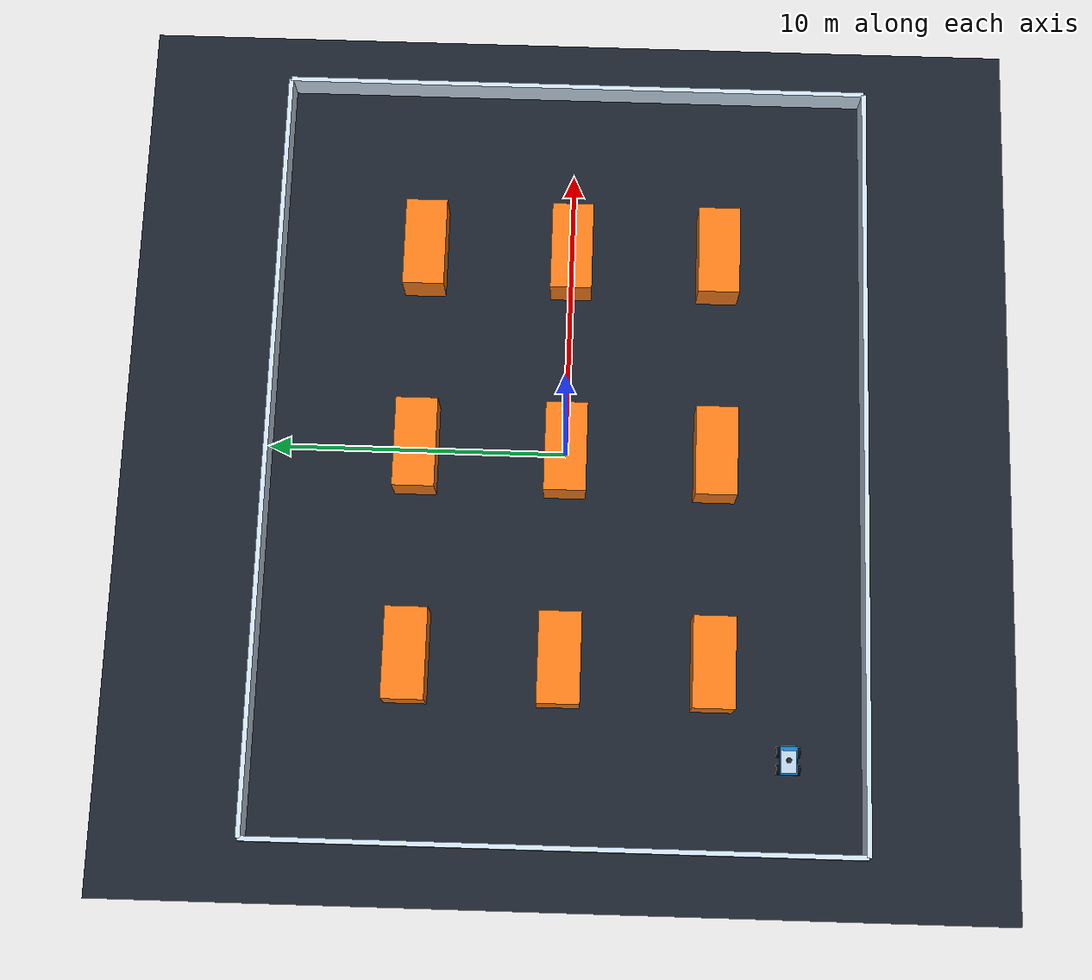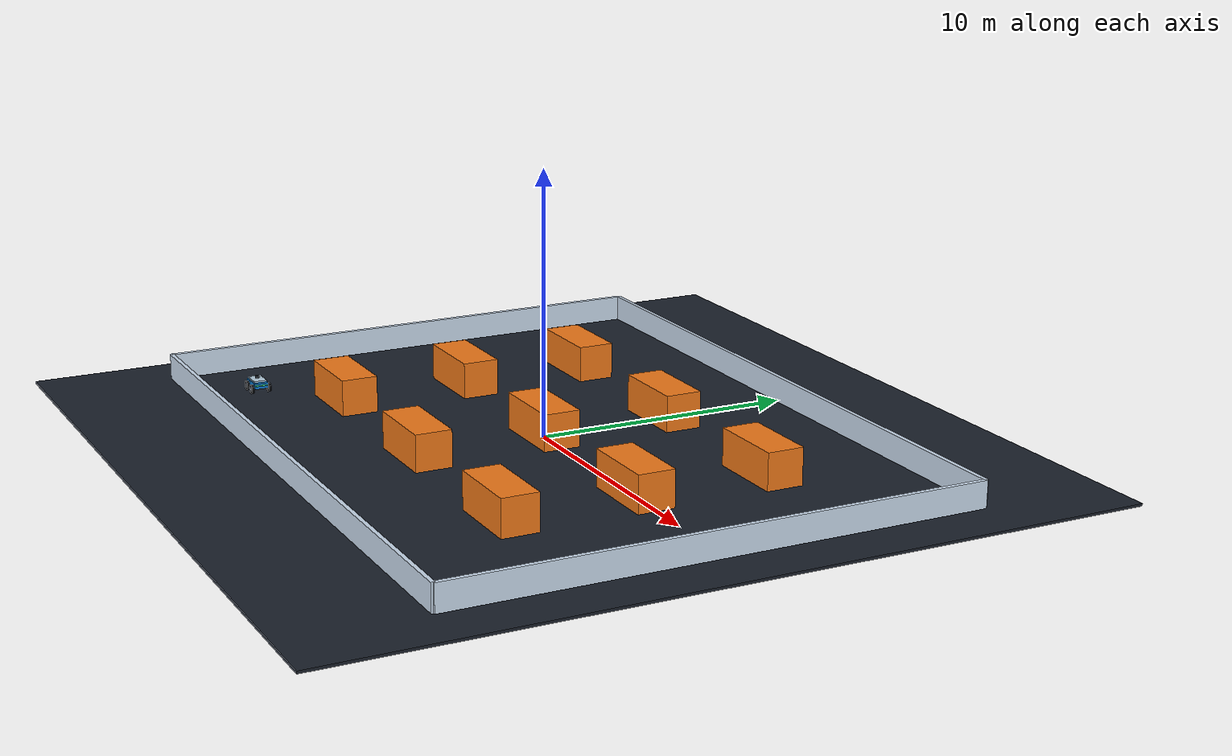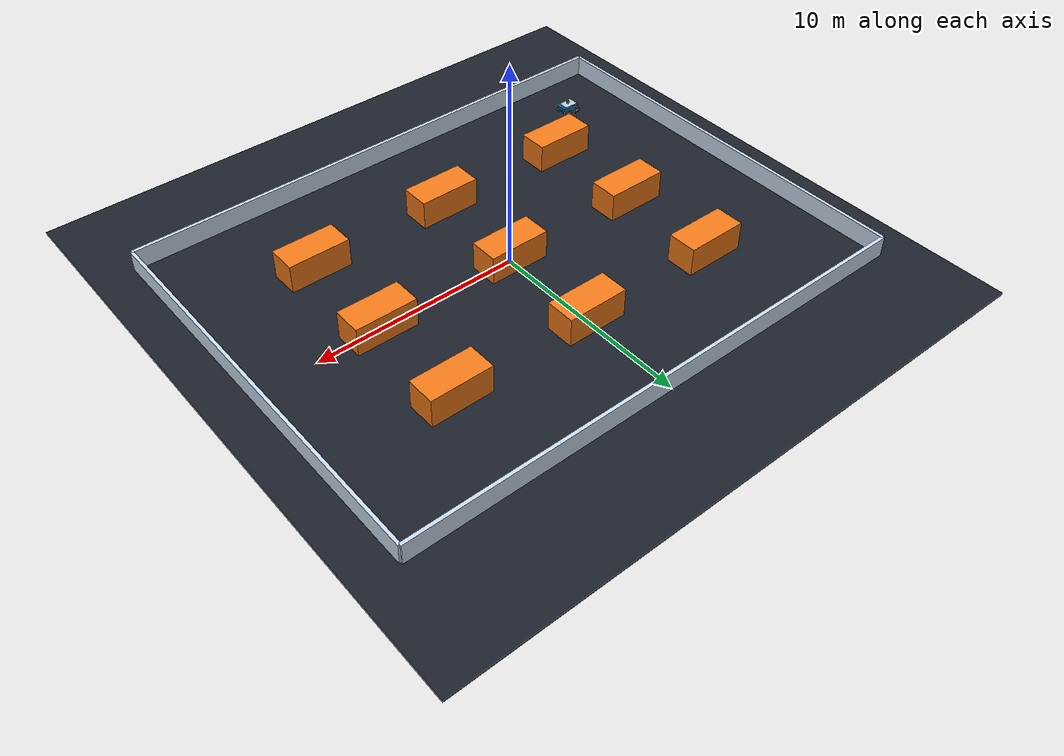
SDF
<?xml version='1.0' encoding='utf-8'?>
<sdf version="1.9">
  <world name="loop_course">
    <physics name="physics" type="ignored">
      <max_step_size>0.002</max_step_size>
      <real_time_factor>1.0</real_time_factor>
    </physics>
    <plugin filename="gz-sim-physics-system" name="gz::sim::systems::Physics" />
    <plugin filename="gz-sim-user-commands-system" name="gz::sim::systems::UserCommands" />
    <plugin filename="gz-sim-scene-broadcaster-system" name="gz::sim::systems::SceneBroadcaster" />
    <plugin filename="gz-sim-contact-system" name="gz::sim::systems::Contact" />
    <plugin filename="gz-sim-imu-system" name="gz::sim::systems::Imu" />
    <plugin filename="gz-sim-sensors-system" name="gz::sim::systems::Sensors">
      <render_engine>ogre2</render_engine>
    </plugin>
    <scene>
      <ambient>0.65 0.65 0.65 1</ambient>
      <background>0.12 0.16 0.22 1</background>
      <shadows>true</shadows>
    </scene>
    <light name="sun" type="directional">
      <pose>0 0 12 0 0 0</pose>
      <diffuse>0.9 0.9 0.85 1</diffuse>
      <specular>0.2 0.2 0.2 1</specular>
      <direction>-0.4 0.2 -0.9</direction>
      <cast_shadows>true</cast_shadows>
    </light>
    <gui fullscreen="false">
      <plugin filename="MinimalScene" name="3D View">
        <engine>ogre2</engine>
        <scene>scene</scene>
        <camera_pose>21 -28 32 0 0.74 2.21</camera_pose>
        <gz-gui>
          <property type="string" key="state">docked</property>
        </gz-gui>
      </plugin>
      <plugin filename="GzSceneManager" name="GzSceneManager" />
      <plugin filename="InteractiveViewControl" name="InteractiveViewControl" />
      <plugin filename="CameraTracking" name="CameraTracking" />
      <plugin filename="EntityContextMenuPlugin" name="EntityContextMenuPlugin" />
      <plugin filename="WorldControl" name="WorldControl">
        <play_pause>true</play_pause>
        <start_paused>false</start_paused>
      </plugin>
      <plugin filename="WorldStats" name="WorldStats">
        <sim_time>true</sim_time>
        <real_time>true</real_time>
        <real_time_factor>true</real_time_factor>
      </plugin>
    </gui>
    <model name="ground">
      <static>true</static>
      <link name="ground">
        <collision name="ground_collision">
          <pose>0 0 -0.05 0 0 0</pose>
          <geometry>
            <box>
              <size>30 30 0.1</size>
            </box>
          </geometry>
        </collision>
        <visual name="ground_visual">
          <pose>0 0 -0.05 0 0 0</pose>
          <geometry>
            <box>
              <size>30 30 0.1</size>
            </box>
          </geometry>
          <material>
            <ambient>0.105 0.13 0.17 1</ambient>
            <diffuse>0.105 0.13 0.17 1</diffuse>
          </material>
        </visual>
      </link>
    </model>
    <model name="loop_cart">
      <pose>-10 -7.5 .18 0 0 0</pose>
      <link name="base_link">
        <inertial>
          <mass>12</mass>
          <inertia>
            <ixx>0.45</ixx>
            <iyy>0.95</iyy>
            <izz>1.2</izz>
            <ixy>0</ixy>
            <ixz>0</ixz>
            <iyz>0</iyz>
          </inertia>
        </inertial>
        <collision name="body_collision">
          <pose>0 0 0.13 0 0 0</pose>
          <geometry>
            <box>
              <size>0.9 0.55 0.22</size>
            </box>
          </geometry>
        </collision>
        <visual name="body_visual">
          <pose>0 0 0.13 0 0 0</pose>
          <geometry>
            <box>
              <size>0.9 0.55 0.22</size>
            </box>
          </geometry>
          <material>
            <ambient>0.04 0.48 0.82 1</ambient>
            <diffuse>0.04 0.48 0.82 1</diffuse>
          </material>
        </visual>
        <visual name="deck">
          <pose>-0.04 0 0.27 0 0 0</pose>
          <geometry>
            <box>
              <size>0.72 0.5 0.07</size>
            </box>
          </geometry>
          <material>
            <ambient>0.72 0.81 0.88 1</ambient>
            <diffuse>0.72 0.81 0.88 1</diffuse>
          </material>
        </visual>
        <visual name="front_stripe">
          <pose>0.46 0 0.15 0 0 0</pose>
          <geometry>
            <box>
              <size>0.04 0.5 0.04</size>
            </box>
          </geometry>
          <material>
            <ambient>0.3 1 0.6 1</ambient>
            <diffuse>0.3 1 0.6 1</diffuse>
          </material>
        </visual>
        <visual name="lidar_visual">
          <pose>0 0 0.39 0 0 0</pose>
          <geometry>
            <cylinder>
              <radius>0.085</radius>
              <length>0.09</length>
            </cylinder>
          </geometry>
          <material>
            <ambient>0.12 0.14 0.17 1</ambient>
            <diffuse>0.12 0.14 0.17 1</diffuse>
          </material>
        </visual>
        <sensor name="body_contact" type="contact">
          <always_on>true</always_on>
          <update_rate>20</update_rate>
          <topic>/loop/contacts/body</topic>
          <contact>
            <collision>body_collision</collision>
          </contact>
        </sensor>
        <sensor name="imu" type="imu">
          <always_on>true</always_on>
          <update_rate>100</update_rate>
          <topic>/loop/imu</topic>
          <gz_frame_id>loop_cart/base_link</gz_frame_id>
          <imu />
        </sensor>
        <sensor name="lidar" type="gpu_lidar">
          <pose>0 0 0.44 0 0 0</pose>
          <topic>/loop/scan</topic>
          <gz_frame_id>loop_cart/lidar</gz_frame_id>
          <update_rate>20</update_rate>
          <always_on>true</always_on>
          <visualize>false</visualize>
          <lidar>
            <scan>
              <horizontal>
                <samples>720</samples>
                <resolution>1</resolution>
                <min_angle>-3.141592653589793</min_angle>
                <max_angle>3.141592653589793</max_angle>
              </horizontal>
            </scan>
            <range>
              <min>0.06</min>
              <max>35</max>
              <resolution>0.005</resolution>
            </range>
          </lidar>
        </sensor>
      </link>
      <link name="front_left">
        <pose>0.28 0.34 0 -1.5707963267948966 0 0</pose>
        <inertial>
          <mass>0.7</mass>
          <inertia>
            <ixx>0.005</ixx>
            <iyy>0.005</iyy>
            <izz>0.009</izz>
            <ixy>0</ixy>
            <ixz>0</ixz>
            <iyz>0</iyz>
          </inertia>
        </inertial>
        <collision name="front_left_collision">
          <pose>0 0 0 0 0 0</pose>
          <geometry>
            <cylinder>
              <radius>0.18</radius>
              <length>0.1</length>
            </cylinder>
          </geometry>
          <surface>
            <friction>
              <ode>
                <mu>1.0</mu>
                <mu2>0.08</mu2>
                <fdir1>1 0 0</fdir1>
              </ode>
            </friction>
          </surface>
        </collision>
        <visual name="front_left_tire">
          <pose>0 0 0 0 0 0</pose>
          <geometry>
            <cylinder>
              <radius>0.18</radius>
              <length>0.1</length>
            </cylinder>
          </geometry>
          <material>
            <ambient>0.025 0.03 0.04 1</ambient>
            <diffuse>0.025 0.03 0.04 1</diffuse>
          </material>
        </visual>
        <visual name="front_left_hub">
          <pose>0 0 0 0 0 0</pose>
          <geometry>
            <cylinder>
              <radius>0.085</radius>
              <length>0.108</length>
            </cylinder>
          </geometry>
          <material>
            <ambient>0.65 0.72 0.8 1</ambient>
            <diffuse>0.65 0.72 0.8 1</diffuse>
          </material>
        </visual>
        <sensor name="front_left_contact" type="contact">
          <always_on>true</always_on>
          <update_rate>20</update_rate>
          <topic>/loop/contacts/front_left</topic>
          <contact>
            <collision>front_left_collision</collision>
          </contact>
        </sensor>
      </link>
      <joint name="front_left_joint" type="revolute">
        <parent>base_link</parent>
        <child>front_left</child>
        <axis>
          <xyz expressed_in="__model__">0 1 0</xyz>
          <limit>
            <lower>-1e+16</lower>
            <upper>1e+16</upper>
            <effort>30</effort>
            <velocity>30</velocity>
          </limit>
        </axis>
      </joint>
      <link name="rear_left">
        <pose>-0.28 0.34 0 -1.5707963267948966 0 0</pose>
        <inertial>
          <mass>0.7</mass>
          <inertia>
            <ixx>0.005</ixx>
            <iyy>0.005</iyy>
            <izz>0.009</izz>
            <ixy>0</ixy>
            <ixz>0</ixz>
            <iyz>0</iyz>
          </inertia>
        </inertial>
        <collision name="rear_left_collision">
          <pose>0 0 0 0 0 0</pose>
          <geometry>
            <cylinder>
              <radius>0.18</radius>
              <length>0.1</length>
            </cylinder>
          </geometry>
          <surface>
            <friction>
              <ode>
                <mu>1.0</mu>
                <mu2>0.08</mu2>
                <fdir1>1 0 0</fdir1>
              </ode>
            </friction>
          </surface>
        </collision>
        <visual name="rear_left_tire">
          <pose>0 0 0 0 0 0</pose>
          <geometry>
            <cylinder>
              <radius>0.18</radius>
              <length>0.1</length>
            </cylinder>
          </geometry>
          <material>
            <ambient>0.025 0.03 0.04 1</ambient>
            <diffuse>0.025 0.03 0.04 1</diffuse>
          </material>
        </visual>
        <visual name="rear_left_hub">
          <pose>0 0 0 0 0 0</pose>
          <geometry>
            <cylinder>
              <radius>0.085</radius>
              <length>0.108</length>
            </cylinder>
          </geometry>
          <material>
            <ambient>0.65 0.72 0.8 1</ambient>
            <diffuse>0.65 0.72 0.8 1</diffuse>
          </material>
        </visual>
        <sensor name="rear_left_contact" type="contact">
          <always_on>true</always_on>
          <update_rate>20</update_rate>
          <topic>/loop/contacts/rear_left</topic>
          <contact>
            <collision>rear_left_collision</collision>
          </contact>
        </sensor>
      </link>
      <joint name="rear_left_joint" type="revolute">
        <parent>base_link</parent>
        <child>rear_left</child>
        <axis>
          <xyz expressed_in="__model__">0 1 0</xyz>
          <limit>
            <lower>-1e+16</lower>
            <upper>1e+16</upper>
            <effort>30</effort>
            <velocity>30</velocity>
          </limit>
        </axis>
      </joint>
      <link name="front_right">
        <pose>0.28 -0.34 0 -1.5707963267948966 0 0</pose>
        <inertial>
          <mass>0.7</mass>
          <inertia>
            <ixx>0.005</ixx>
            <iyy>0.005</iyy>
            <izz>0.009</izz>
            <ixy>0</ixy>
            <ixz>0</ixz>
            <iyz>0</iyz>
          </inertia>
        </inertial>
        <collision name="front_right_collision">
          <pose>0 0 0 0 0 0</pose>
          <geometry>
            <cylinder>
              <radius>0.18</radius>
              <length>0.1</length>
            </cylinder>
          </geometry>
          <surface>
            <friction>
              <ode>
                <mu>1.0</mu>
                <mu2>0.08</mu2>
                <fdir1>1 0 0</fdir1>
              </ode>
            </friction>
          </surface>
        </collision>
        <visual name="front_right_tire">
          <pose>0 0 0 0 0 0</pose>
          <geometry>
            <cylinder>
              <radius>0.18</radius>
              <length>0.1</length>
            </cylinder>
          </geometry>
          <material>
            <ambient>0.025 0.03 0.04 1</ambient>
            <diffuse>0.025 0.03 0.04 1</diffuse>
          </material>
        </visual>
        <visual name="front_right_hub">
          <pose>0 0 0 0 0 0</pose>
          <geometry>
            <cylinder>
              <radius>0.085</radius>
              <length>0.108</length>
            </cylinder>
          </geometry>
          <material>
            <ambient>0.65 0.72 0.8 1</ambient>
            <diffuse>0.65 0.72 0.8 1</diffuse>
          </material>
        </visual>
        <sensor name="front_right_contact" type="contact">
          <always_on>true</always_on>
          <update_rate>20</update_rate>
          <topic>/loop/contacts/front_right</topic>
          <contact>
            <collision>front_right_collision</collision>
          </contact>
        </sensor>
      </link>
      <joint name="front_right_joint" type="revolute">
        <parent>base_link</parent>
        <child>front_right</child>
        <axis>
          <xyz expressed_in="__model__">0 1 0</xyz>
          <limit>
            <lower>-1e+16</lower>
            <upper>1e+16</upper>
            <effort>30</effort>
            <velocity>30</velocity>
          </limit>
        </axis>
      </joint>
      <link name="rear_right">
        <pose>-0.28 -0.34 0 -1.5707963267948966 0 0</pose>
        <inertial>
          <mass>0.7</mass>
          <inertia>
            <ixx>0.005</ixx>
            <iyy>0.005</iyy>
            <izz>0.009</izz>
            <ixy>0</ixy>
            <ixz>0</ixz>
            <iyz>0</iyz>
          </inertia>
        </inertial>
        <collision name="rear_right_collision">
          <pose>0 0 0 0 0 0</pose>
          <geometry>
            <cylinder>
              <radius>0.18</radius>
              <length>0.1</length>
            </cylinder>
          </geometry>
          <surface>
            <friction>
              <ode>
                <mu>1.0</mu>
                <mu2>0.08</mu2>
                <fdir1>1 0 0</fdir1>
              </ode>
            </friction>
          </surface>
        </collision>
        <visual name="rear_right_tire">
          <pose>0 0 0 0 0 0</pose>
          <geometry>
            <cylinder>
              <radius>0.18</radius>
              <length>0.1</length>
            </cylinder>
          </geometry>
          <material>
            <ambient>0.025 0.03 0.04 1</ambient>
            <diffuse>0.025 0.03 0.04 1</diffuse>
          </material>
        </visual>
        <visual name="rear_right_hub">
          <pose>0 0 0 0 0 0</pose>
          <geometry>
            <cylinder>
              <radius>0.085</radius>
              <length>0.108</length>
            </cylinder>
          </geometry>
          <material>
            <ambient>0.65 0.72 0.8 1</ambient>
            <diffuse>0.65 0.72 0.8 1</diffuse>
          </material>
        </visual>
        <sensor name="rear_right_contact" type="contact">
          <always_on>true</always_on>
          <update_rate>20</update_rate>
          <topic>/loop/contacts/rear_right</topic>
          <contact>
            <collision>rear_right_collision</collision>
          </contact>
        </sensor>
      </link>
      <joint name="rear_right_joint" type="revolute">
        <parent>base_link</parent>
        <child>rear_right</child>
        <axis>
          <xyz expressed_in="__model__">0 1 0</xyz>
          <limit>
            <lower>-1e+16</lower>
            <upper>1e+16</upper>
            <effort>30</effort>
            <velocity>30</velocity>
          </limit>
        </axis>
      </joint>
      <plugin filename="gz-sim-diff-drive-system" name="gz::sim::systems::DiffDrive">
        <left_joint>front_left_joint</left_joint>
        <left_joint>rear_left_joint</left_joint>
        <right_joint>front_right_joint</right_joint>
        <right_joint>rear_right_joint</right_joint>
        <wheel_separation>0.68</wheel_separation>
        <wheel_radius>0.18</wheel_radius>
        <topic>/loop/cmd_vel</topic>
        <odom_topic>/loop/wheel_odom</odom_topic>
        <tf_topic>/loop/wheel_tf</tf_topic>
        <frame_id>wheel_odom</frame_id>
        <child_frame_id>loop_cart/base_link</child_frame_id>
        <max_linear_velocity>1.5</max_linear_velocity>
        <min_linear_velocity>-0.8</min_linear_velocity>
        <max_angular_velocity>1.5</max_angular_velocity>
        <min_angular_velocity>-1.5</min_angular_velocity>
        <max_linear_acceleration>1.2</max_linear_acceleration>
        <min_linear_acceleration>-2.5</min_linear_acceleration>
        <max_angular_acceleration>2.5</max_angular_acceleration>
        <min_angular_acceleration>-2.5</min_angular_acceleration>
      </plugin>
      <plugin filename="gz-sim-odometry-publisher-system" name="gz::sim::systems::OdometryPublisher">
        <odom_topic>/loop/ground_truth</odom_topic>
        <tf_topic>/loop/tf</tf_topic>
        <odom_frame>world</odom_frame>
        <robot_base_frame>loop_cart/base_link</robot_base_frame>
        <dimensions>3</dimensions>
        <odom_publish_frequency>30</odom_publish_frequency>
      </plugin>
    </model>
    <model name="overview_camera">
      <static>true</static>
      <link name="camera_link">
        <pose>21 -28 36 0 0.80 2.21</pose>
        <sensor name="overview" type="camera">
          <topic>/loop/overview</topic>
          <update_rate>1</update_rate>
          <always_on>true</always_on>
          <camera>
            <horizontal_fov>1.05</horizontal_fov>
            <image>
              <width>1280</width>
              <height>900</height>
              <format>R8G8B8</format>
            </image>
            <clip>
              <near>0.1</near>
              <far>60</far>
            </clip>
          </camera>
        </sensor>
      </link>
    </model>
    <model name="outer_wall">
      <static>true</static>
      <link name="wall">
        <collision name="wall_0">
          <pose>0 10.0 .5 0 0 0</pose>
          <geometry>
            <box>
              <size>26 .16 1</size>
            </box>
          </geometry>
        </collision>
        <visual name="wall_0_visual">
          <pose>0 10.0 .5 0 0 0</pose>
          <geometry>
            <box>
              <size>26 .16 1</size>
            </box>
          </geometry>
          <material>
            <ambient>.8 .87 .94 1</ambient>
            <diffuse>.8 .87 .94 1</diffuse>
          </material>
        </visual>
        <collision name="wall_1">
          <pose>0 -10.0 .5 0 0 0</pose>
          <geometry>
            <box>
              <size>26 .16 1</size>
            </box>
          </geometry>
        </collision>
        <visual name="wall_1_visual">
          <pose>0 -10.0 .5 0 0 0</pose>
          <geometry>
            <box>
              <size>26 .16 1</size>
            </box>
          </geometry>
          <material>
            <ambient>.8 .87 .94 1</ambient>
            <diffuse>.8 .87 .94 1</diffuse>
          </material>
        </visual>
        <collision name="wall_2">
          <pose>13.0 0 .5 0 0 0</pose>
          <geometry>
            <box>
              <size>.16 20 1</size>
            </box>
          </geometry>
        </collision>
        <visual name="wall_2_visual">
          <pose>13.0 0 .5 0 0 0</pose>
          <geometry>
            <box>
              <size>.16 20 1</size>
            </box>
          </geometry>
          <material>
            <ambient>.8 .87 .94 1</ambient>
            <diffuse>.8 .87 .94 1</diffuse>
          </material>
        </visual>
        <collision name="wall_3">
          <pose>-13.0 0 .5 0 0 0</pose>
          <geometry>
            <box>
              <size>.16 20 1</size>
            </box>
          </geometry>
        </collision>
        <visual name="wall_3_visual">
          <pose>-13.0 0 .5 0 0 0</pose>
          <geometry>
            <box>
              <size>.16 20 1</size>
            </box>
          </geometry>
          <material>
            <ambient>.8 .87 .94 1</ambient>
            <diffuse>.8 .87 .94 1</diffuse>
          </material>
        </visual>
      </link>
    </model>
    <model name="obstacle_shelf_0">
      <static>true</static>
      <link name="wall">
        <collision name="obstacle_shelf_0">
          <pose>-7 -5 .7 0 0 0</pose>
          <geometry>
            <box>
              <size>3 1.4 1.4</size>
            </box>
          </geometry>
        </collision>
        <visual name="obstacle_shelf_0_visual">
          <pose>-7 -5 .7 0 0 0</pose>
          <geometry>
            <box>
              <size>3 1.4 1.4</size>
            </box>
          </geometry>
          <material>
            <ambient>.95 .48 .10 1</ambient>
            <diffuse>.95 .48 .10 1</diffuse>
          </material>
        </visual>
      </link>
    </model>
    <model name="obstacle_shelf_1">
      <static>true</static>
      <link name="wall">
        <collision name="obstacle_shelf_1">
          <pose>-7 0 .7 0 0 0</pose>
          <geometry>
            <box>
              <size>3 1.4 1.4</size>
            </box>
          </geometry>
        </collision>
        <visual name="obstacle_shelf_1_visual">
          <pose>-7 0 .7 0 0 0</pose>
          <geometry>
            <box>
              <size>3 1.4 1.4</size>
            </box>
          </geometry>
          <material>
            <ambient>.95 .48 .10 1</ambient>
            <diffuse>.95 .48 .10 1</diffuse>
          </material>
        </visual>
      </link>
    </model>
    <model name="obstacle_shelf_2">
      <static>true</static>
      <link name="wall">
        <collision name="obstacle_shelf_2">
          <pose>-7 5 .7 0 0 0</pose>
          <geometry>
            <box>
              <size>3 1.4 1.4</size>
            </box>
          </geometry>
        </collision>
        <visual name="obstacle_shelf_2_visual">
          <pose>-7 5 .7 0 0 0</pose>
          <geometry>
            <box>
              <size>3 1.4 1.4</size>
            </box>
          </geometry>
          <material>
            <ambient>.95 .48 .10 1</ambient>
            <diffuse>.95 .48 .10 1</diffuse>
          </material>
        </visual>
      </link>
    </model>
    <model name="obstacle_shelf_3">
      <static>true</static>
      <link name="wall">
        <collision name="obstacle_shelf_3">
          <pose>0 -5 .7 0 0 0</pose>
          <geometry>
            <box>
              <size>3 1.4 1.4</size>
            </box>
          </geometry>
        </collision>
        <visual name="obstacle_shelf_3_visual">
          <pose>0 -5 .7 0 0 0</pose>
          <geometry>
            <box>
              <size>3 1.4 1.4</size>
            </box>
          </geometry>
          <material>
            <ambient>.95 .48 .10 1</ambient>
            <diffuse>.95 .48 .10 1</diffuse>
          </material>
        </visual>
      </link>
    </model>
    <model name="obstacle_shelf_4">
      <static>true</static>
      <link name="wall">
        <collision name="obstacle_shelf_4">
          <pose>0 0 .7 0 0 0</pose>
          <geometry>
            <box>
              <size>3 1.4 1.4</size>
            </box>
          </geometry>
        </collision>
        <visual name="obstacle_shelf_4_visual">
          <pose>0 0 .7 0 0 0</pose>
          <geometry>
            <box>
              <size>3 1.4 1.4</size>
            </box>
          </geometry>
          <material>
            <ambient>.95 .48 .10 1</ambient>
            <diffuse>.95 .48 .10 1</diffuse>
          </material>
        </visual>
      </link>
    </model>
    <model name="obstacle_shelf_5">
      <static>true</static>
      <link name="wall">
        <collision name="obstacle_shelf_5">
          <pose>0 5 .7 0 0 0</pose>
          <geometry>
            <box>
              <size>3 1.4 1.4</size>
            </box>
          </geometry>
        </collision>
        <visual name="obstacle_shelf_5_visual">
          <pose>0 5 .7 0 0 0</pose>
          <geometry>
            <box>
              <size>3 1.4 1.4</size>
            </box>
          </geometry>
          <material>
            <ambient>.95 .48 .10 1</ambient>
            <diffuse>.95 .48 .10 1</diffuse>
          </material>
        </visual>
      </link>
    </model>
    <model name="obstacle_shelf_6">
      <static>true</static>
      <link name="wall">
        <collision name="obstacle_shelf_6">
          <pose>7 -5 .7 0 0 0</pose>
          <geometry>
            <box>
              <size>3 1.4 1.4</size>
            </box>
          </geometry>
        </collision>
        <visual name="obstacle_shelf_6_visual">
          <pose>7 -5 .7 0 0 0</pose>
          <geometry>
            <box>
              <size>3 1.4 1.4</size>
            </box>
          </geometry>
          <material>
            <ambient>.95 .48 .10 1</ambient>
            <diffuse>.95 .48 .10 1</diffuse>
          </material>
        </visual>
      </link>
    </model>
    <model name="obstacle_shelf_7">
      <static>true</static>
      <link name="wall">
        <collision name="obstacle_shelf_7">
          <pose>7 0 .7 0 0 0</pose>
          <geometry>
            <box>
              <size>3 1.4 1.4</size>
            </box>
          </geometry>
        </collision>
        <visual name="obstacle_shelf_7_visual">
          <pose>7 0 .7 0 0 0</pose>
          <geometry>
            <box>
              <size>3 1.4 1.4</size>
            </box>
          </geometry>
          <material>
            <ambient>.95 .48 .10 1</ambient>
            <diffuse>.95 .48 .10 1</diffuse>
          </material>
        </visual>
      </link>
    </model>
    <model name="obstacle_shelf_8">
      <static>true</static>
      <link name="wall">
        <collision name="obstacle_shelf_8">
          <pose>7 5 .7 0 0 0</pose>
          <geometry>
            <box>
              <size>3 1.4 1.4</size>
            </box>
          </geometry>
        </collision>
        <visual name="obstacle_shelf_8_visual">
          <pose>7 5 .7 0 0 0</pose>
          <geometry>
            <box>
              <size>3 1.4 1.4</size>
            </box>
          </geometry>
          <material>
            <ambient>.95 .48 .10 1</ambient>
            <diffuse>.95 .48 .10 1</diffuse>
          </material>
        </visual>
      </link>
    </model>
  </world>
</sdf>
